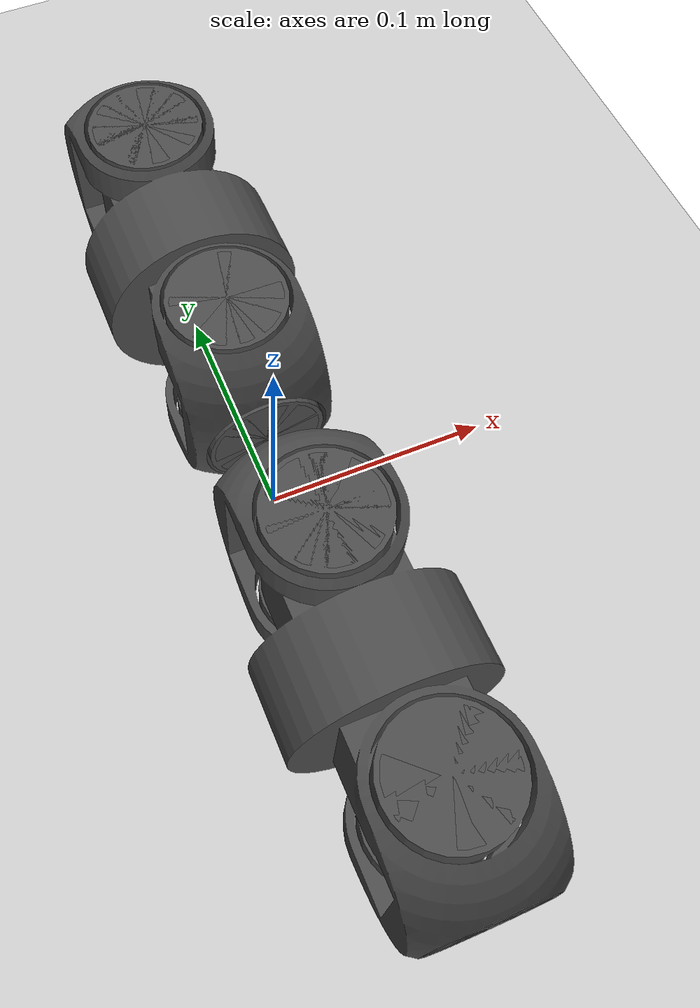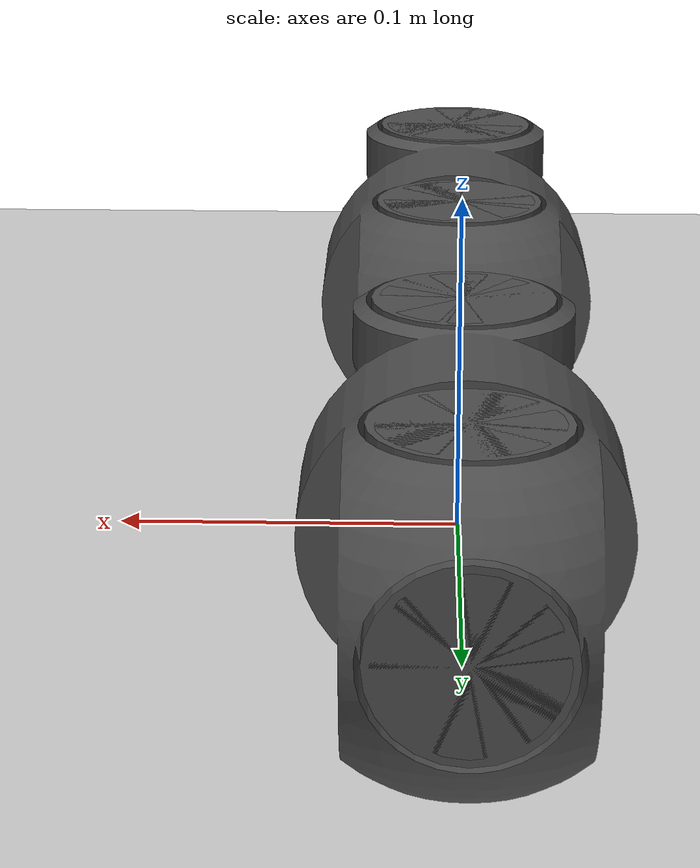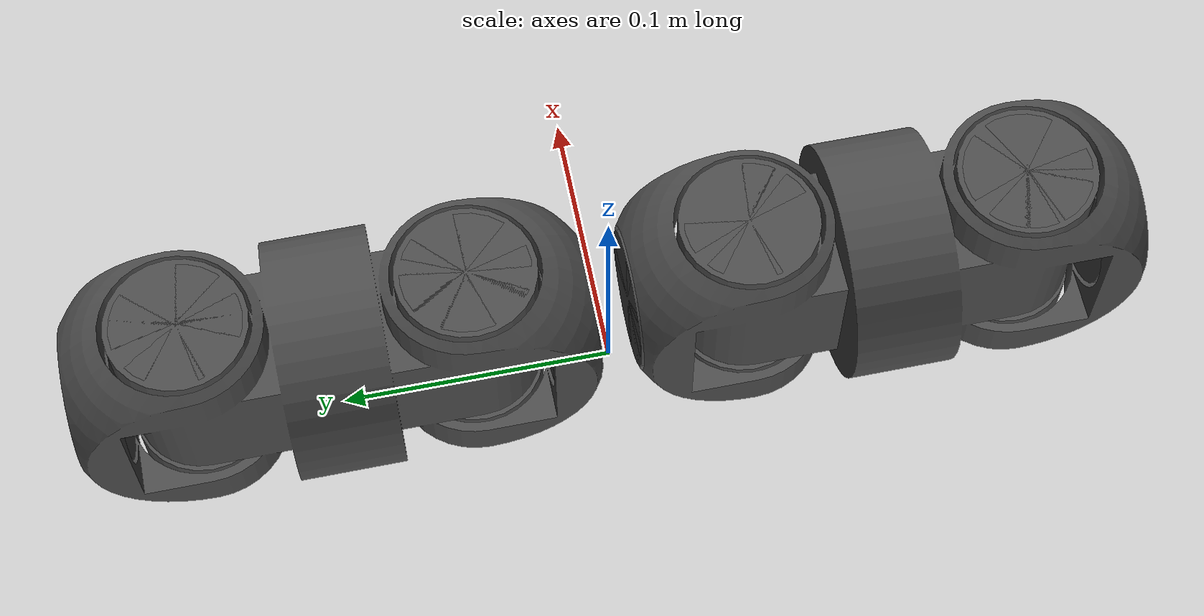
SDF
<sdf version="1.6">
 <world name="default">
  <include><uri>model://sun</uri></include>
  <include><uri>model://ground_plane</uri></include>
  <include>
   <name>universalModule</name>
   <pose>0 -0.1 0.043 0 -1.5708 3.1416</pose>
   <uri>model://universalModule</uri>
  </include>
  <include>
   <name>universalModule_0</name>
   <pose>0 0.1 0.043 0 1.5708 0</pose>
   <uri>model://universalModule</uri>
  </include>
  <plugin name="distributor" filename="libdistributorPlugin.so">
   <rofi><id>0</id><name>universalModule</name></rofi>
   <rofi><id>1</id><name>universalModule_0</name></rofi>
  </plugin>
  <plugin name="attacher" filename="libattacherPlugin.so"/>
 </world>
</sdf>

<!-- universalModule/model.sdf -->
<sdf version="1.6">
    <model name="universalModule">
        <link name="bodyA">
            <self_collide>true</self_collide>
            <inertial>
                <pose>0 -0.029663 0 0 -0 0</pose>
                <mass>0.201058</mass>
                <inertia>
                    <ixx>0.00016</ixx>
                    <ixy>0</ixy>
                    <ixz>0</ixz>
                    <iyy>0.00013</iyy>
                    <iyz>0</iyz>
                    <izz>0.000158</izz>
                </inertia>
            </inertial>
            <visual name="visual-bodyA">
                <pose>0 0 0 0 -0 0</pose>
                <geometry>
                    <mesh>
                        <uri>model://universalModule/meshes/model.obj</uri>
                        <scale>0.001 0.001 0.001</scale>
                        <submesh>
                            <name>bodyA</name>
                        </submesh>
                    </mesh>
                </geometry>
                <material>
                    <lighting>1</lighting>
                    <script>
                        <uri>file://media/materials/scripts/gazebo.material</uri>
                        <name>Gazebo/DarkGrey</name>
                    </script>
                    <shader type="pixel">
                        <normal_map>__default__</normal_map>
                    </shader>
                </material>
            </visual>
            <collision name="collision-bodyA">
                <pose>0 0 0 0 -0 0</pose>
                <geometry>
                    <mesh>
                        <uri>model://universalModule/meshes/model.obj</uri>
                        <scale>0.001 0.001 0.001</scale>
                        <submesh>
                            <name>bodyA</name>
                        </submesh>
                    </mesh>
                </geometry>
            </collision>
        </link>

        <link name="bodyB">
            <self_collide>true</self_collide>
            <inertial>
                <pose>0 0.029663 0 0 -0 0</pose>
                <mass>0.201058</mass>
                <inertia>
                    <ixx>0.00016</ixx>
                    <ixy>0</ixy>
                    <ixz>0</ixz>
                    <iyy>0.00013</iyy>
                    <iyz>0</iyz>
                    <izz>0.000158</izz>
                </inertia>
            </inertial>
            <visual name="visual-bodyB">
                <pose>0 0 0 0 -0 0</pose>
                <geometry>
                    <mesh>
                        <uri>model://universalModule/meshes/model.obj</uri>
                        <scale>0.001 0.001 0.001</scale>
                        <submesh>
                            <name>bodyB</name>
                        </submesh>
                    </mesh>
                </geometry>
                <material>
                    <lighting>1</lighting>
                    <script>
                        <uri>file://media/materials/scripts/gazebo.material</uri>
                        <name>Gazebo/DarkGrey</name>
                    </script>
                    <shader type="pixel">
                        <normal_map>__default__</normal_map>
                    </shader>
                </material>
            </visual>
            <collision name="collision-bodyB">
                <pose>0 0 0 0 -0 0</pose>
                <geometry>
                    <mesh>
                        <uri>model://universalModule/meshes/model.obj</uri>
                        <scale>0.001 0.001 0.001</scale>
                        <submesh>
                            <name>bodyB</name>
                        </submesh>
                    </mesh>
                </geometry>
            </collision>
        </link>

        <link name="shoeA">
            <self_collide>false</self_collide>
            <pose>-0.0265 -0.05 0 0 -0 0</pose>
            <inertial>
                <pose>0.0265 -0.012973 0 0 -0 0</pose>
                <mass>0.089474</mass>
                <inertia>
                    <ixx>5.9e-05</ixx>
                    <ixy>0</ixy>
                    <ixz>0</ixz>
                    <iyy>0.000103</iyy>
                    <iyz>0</iyz>
                    <izz>0.000117</izz>
                </inertia>
            </inertial>
            <collision name="shoeA-collision">
                <pose>0.0265 0.05 -0 0 -0 0</pose>
                <geometry>
                    <mesh>
                        <uri>model://universalModule/meshes/model.obj</uri>
                        <scale>0.001 0.001 0.001</scale>
                        <submesh>
                            <name>shoeA</name>
                        </submesh>
                    </mesh>
                </geometry>
            </collision>
            <visual name="shoeA-visual">
                <pose>0.0265 0.05 -0 0 -0 0</pose>
                <geometry>
                    <mesh>
                        <uri>model://universalModule/meshes/model.obj</uri>
                        <scale>0.001 0.001 0.001</scale>
                        <submesh>
                            <name>shoeA</name>
                        </submesh>
                    </mesh>
                </geometry>
                <material>
                    <lighting>1</lighting>
                    <script>
                        <uri>file://media/materials/scripts/gazebo.material</uri>
                        <name>Gazebo/Yellow</name>
                    </script>
                    <shader type="pixel">
                        <normal_map>__default__</normal_map>
                    </shader>
                </material>
            </visual>
        </link>

        <link name="shoeB">
            <self_collide>false</self_collide>
            <pose>-0.0265 0.05 0.0015 0 -0 0</pose>
            <inertial>
                <pose>0.0265 0.012973 0 0 -0 0</pose>
                <mass>0.089474</mass>
                <inertia>
                    <ixx>5.9e-05</ixx>
                    <ixy>0</ixy>
                    <ixz>0</ixz>
                    <iyy>0.000103</iyy>
                    <iyz>0</iyz>
                    <izz>0.000117</izz>
                </inertia>
            </inertial>
            <collision name="shoeB-collision">
                <pose>0.0265 -0.05 -0.0015 0 -0 0</pose>
                <geometry>
                    <mesh>
                        <uri>model://universalModule/meshes/model.obj</uri>
                        <scale>0.001 0.001 0.001</scale>
                        <submesh>
                            <name>shoeB</name>
                        </submesh>
                    </mesh>
                </geometry>
            </collision>
            <visual name="shoeB-visual">
                <pose>0.0265 -0.05 -0.0015 0 -0 0</pose>
                <geometry>
                    <mesh>
                        <uri>model://universalModule/meshes/model.obj</uri>
                        <scale>0.001 0.001 0.001</scale>
                        <submesh>
                            <name>shoeB</name>
                        </submesh>
                    </mesh>
                </geometry>
                <material>
                    <lighting>1</lighting>
                    <script>
                        <uri>file://media/materials/scripts/gazebo.material</uri>
                        <name>Gazebo/Yellow</name>
                    </script>
                    <shader type="pixel">
                        <normal_map>__default__</normal_map>
                    </shader>
                </material>
            </visual>
        </link>

        <model name="connectorAplusX">
            <pose>0.043 -0.05 0 -1.5708 0 -1.5708</pose>
            <include>
                <uri>model://roficom</uri>
            </include>
        </model>

        <model name="connectorAminusX">
            <pose>-0.043 -0.05 0 -1.5708 0 1.5708</pose>
            <include>
                <uri>model://roficom</uri>
            </include>
        </model>

        <model name="connectorAminusZ">
            <pose>0 -0.093 0 1.5708 0 0</pose>
            <include>
                <uri>model://roficom</uri>
            </include>
        </model>

        <model name="connectorBplusX">
            <pose>-0.043 0.05 0 -1.5708 0 1.5708</pose>
            <include>
                <uri>model://roficom</uri>
            </include>
        </model>

        <model name="connectorBminusX">
            <pose>0.043 0.05 0 -1.5708 0 -1.5708</pose>
            <include>
                <uri>model://roficom</uri>
            </include>
        </model>

        <model name="connectorBminusZ">
            <pose>0 0.093 0 1.5708 0 3.1416</pose>
            <include>
                <uri>model://roficom</uri>
            </include>
        </model>

        <joint name="bodyRev" type="revolute">
            <child>bodyB</child>
            <parent>bodyA</parent>
            <axis>
                <xyz>0 0.01 0</xyz>
                <limit>
                    <velocity>6.545</velocity> <!-- 60/0.16 deg/s -->
                    <effort>1.2</effort> <!-- max torque [Nm] -->
                </limit>
                <dynamics>
                    <friction>0</friction>
                    <spring_reference>0</spring_reference>
                    <spring_stiffness>0</spring_stiffness>
                </dynamics>
                <use_parent_model_frame>1</use_parent_model_frame>
            </axis>
        </joint>

        <joint name="shoeARev" type="revolute">
            <child>shoeA</child>
            <parent>bodyA</parent>
            <axis>
                <xyz>-0.01 0 0</xyz>
                <limit>
                    <lower>-1.57079632679</lower>
                    <upper>1.57079632679</upper>
                    <velocity>6.545</velocity> <!-- 60/0.16 deg/s -->
                    <effort>1.2</effort> <!-- max torque [Nm] -->
                </limit>
                <dynamics>
                    <friction>0</friction>
                    <spring_reference>0</spring_reference>
                    <spring_stiffness>0</spring_stiffness>
                </dynamics>
                <use_parent_model_frame>1</use_parent_model_frame>
            </axis>
        </joint>

        <joint name="shoeBRev" type="revolute">
            <child>shoeB</child>
            <parent>bodyB</parent>
            <axis>
                <xyz>0.01 0 0</xyz>
                <limit>
                    <lower>-1.57079632679</lower>
                    <upper>1.57079632679</upper>
                    <velocity>6.545</velocity> <!-- 60/0.16 deg/s -->
                    <effort>1.2</effort> <!-- max torque [Nm] -->
                </limit>
                <dynamics>
                    <friction>0</friction>
                    <spring_reference>0</spring_reference>
                    <spring_stiffness>0</spring_stiffness>
                </dynamics>
                <use_parent_model_frame>1</use_parent_model_frame>
            </axis>
        </joint>

        <joint name="connectorAplusX" type="fixed">
            <child>connectorAplusX::RoFICoM::outer</child>
            <parent>shoeA</parent>
        </joint>

        <joint name="connectorAminusX" type="fixed">
            <child>connectorAminusX::RoFICoM::outer</child>
            <parent>shoeA</parent>
        </joint>

        <joint name="connectorAminusZ" type="fixed">
            <child>connectorAminusZ::RoFICoM::outer</child>
            <parent>shoeA</parent>
        </joint>

        <joint name="connectorBplusX" type="fixed">
            <child>connectorBplusX::RoFICoM::outer</child>
            <parent>shoeB</parent>
        </joint>

        <joint name="connectorBminusX" type="fixed">
            <child>connectorBminusX::RoFICoM::outer</child>
            <parent>shoeB</parent>
        </joint>

        <joint name="connectorBminusZ" type="fixed">
            <child>connectorBminusZ::RoFICoM::outer</child>
            <parent>shoeB</parent>
        </joint>

        <plugin name="rofiModule" filename="librofiModulePlugin.so">
            <controller>
                <joint>shoeARev</joint>
                <joint>shoeBRev</joint>
                <joint>bodyRev</joint>
                <velocity>
                    <pid_gains>0.05 10 0</pid_gains>
                </velocity>
                <position>
                    <pid_gains>5 15 1</pid_gains>
                </position>
            </controller>
        </plugin>
    </model>
</sdf>

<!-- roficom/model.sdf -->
<sdf version='1.6'>
    <model name='RoFICoM'>
        <self_collide>false</self_collide>
        <link name='outer'>
            <inertial>
                <pose>0 0 -8.5e-3 0 0 0</pose>
                <mass>10e-3</mass> <!-- TODO check -->
                <inertia>
                    <!-- ixx = iyy = 1/12 * mass * (3 * radius^2 + length^2) -->
                    <!-- izz = 0.5 * mass * radius^2 -->
                    <!-- ixy = ixz = iyz = 0 -->
                    <ixx>1.775833e-6</ixx>
                    <iyy>1.775833e-6</iyy>
                    <izz>3.125e-6</izz>
                    <ixy>0.0</ixy>
                    <ixz>0.0</ixz>
                    <iyz>0.0</iyz>
                </inertia>
            </inertial>
            <collision name='outer-collision'>
                <pose>0 0 -8.5e-3 0 0 0</pose>
                <geometry>
                    <cylinder>
                        <radius>25e-3</radius>
                        <length>17e-3</length>
                    </cylinder>
                </geometry>
            </collision>
            <visual name='visual'>
                <pose>0 0 -8.5e-3 0 0 0</pose>
                <geometry>
                    <cylinder>
                        <radius>25e-3</radius>
                        <length>17e-3</length>
                    </cylinder>
                </geometry>
                <material>
                    <script>
                        <uri>file://media/materials/scripts/gazebo.material</uri>
                        <name>Gazebo/DarkGrey</name>
                    </script>
                </material>
            </visual>
        </link>
        <link name='inner'>
            <inertial>
                <pose>0 0 -3.5e-3 0 0 0</pose>
                <mass>10e-3</mass> <!-- TODO check -->
                <inertia>
                    <!-- ixx = iyy = 1/12 * mass * (3 * radius^2 + length^2) -->
                    <!-- izz = 0.5 * mass * radius^2 -->
                    <!-- ixy = ixz = iyz = 0 -->
                    <ixx>1.3633e-6</ixx>
                    <iyy>1.3633e-6</iyy>
                    <izz>2.645e-6</izz>
                    <ixy>0.0</ixy>
                    <ixz>0.0</ixz>
                    <iyz>0.0</iyz>
                </inertia>
            </inertial>
            <collision name='inner-collision'>
                <pose>0 0 -3.5e-3 0 0 0</pose>
                <geometry>
                    <cylinder>
                        <radius>23e-3</radius>
                        <length>7e-3</length>
                    </cylinder>
                </geometry>
            </collision>
            <visual name='visual'>
                <pose>0 0 -3.5e-3 0 0 0</pose>
                <geometry>
                    <cylinder>
                        <radius>23e-3</radius>
                        <length>7e-3</length>
                    </cylinder>
                </geometry>
                <material>
                    <script>
                        <uri>file://media/materials/scripts/gazebo.material</uri>
                        <name>Gazebo/DarkGrey</name>
                    </script>
                </material>
            </visual>
        </link>
        <joint name='extendJoint' type='prismatic'>
            <parent>outer</parent>
            <child>inner</child>
            <axis>
                <xyz>0 0 1</xyz>
                <limit>
                    <lower>0</lower>
                    <upper>7e-3</upper>
                    <effort>50</effort>
                    <velocity>25e-3</velocity>
                </limit>
                <initial_position>0</initial_position>
                <dynamics>
                    <friction>0</friction>
                    <spring_reference>0</spring_reference>
                    <spring_stiffness>0</spring_stiffness>
                </dynamics>
                <use_parent_model_frame>1</use_parent_model_frame>
            </axis>
        </joint>
        <plugin name='roficom' filename='libroficomPlugin.so'>
            <joint>extendJoint</joint>
            <extend>false</extend>
        </plugin>
    </model>
</sdf>
